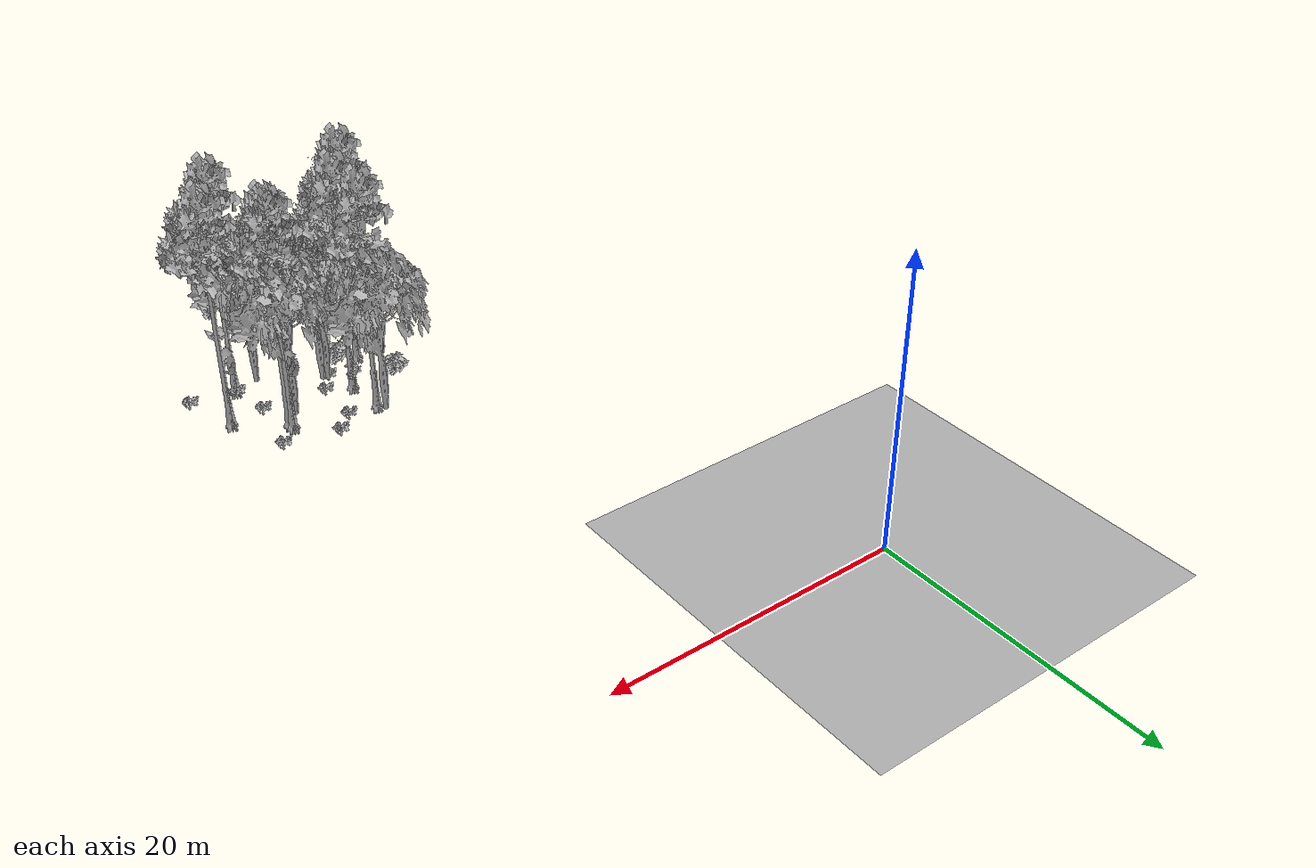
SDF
<sdf version="1.7">
 <world name="default">
  <model name="ground_plane">
   <static>1</static>
   <link name="link">
    <collision name="collision">
     <pose>-50 0 0 0 -0 0</pose>
     <geometry><plane><normal>0 0 1</normal><size>80 80</size></plane></geometry>
     <surface><contact><ode><min_depth>0.01</min_depth><max_vel>0</max_vel></ode></contact></surface>
    </collision>
    <visual name="grass">
     <cast_shadows>0</cast_shadows>
     <geometry>
      <mesh>
       <scale>0.46714285714285714 0.46714285714285714 0.1</scale>
       <uri>file://grass_plane/meshes/grass_plane.dae</uri>
      </mesh>
     </geometry>
    </visual>
   </link>
  </model>
  <model name="Tree 7">
   <static>1</static>
   <pose>22.965398107199924 -38.944472882966785 0 1.57079 -0 0</pose>
   <link name="link">
    <collision name="collision">
     <geometry><mesh><scale>3.5 5 3.5</scale><uri>model://tree_9/meshes/tree_9.obj</uri></mesh></geometry>
    </collision>
    <visual name="visual">
     <geometry><mesh><scale>3.5 5 3.5</scale><uri>model://tree_9/meshes/tree_9.obj</uri></mesh></geometry>
    </visual>
   </link>
  </model>
  <model name="Tree 29">
   <static>1</static>
   <pose>17.50396830890879 -36.59775077264011 0 1.57079 -0 0</pose>
   <link name="link">
    <collision name="collision">
     <geometry><mesh><scale>3.5 5 3.5</scale><uri>model://tree_2/meshes/tree_2.obj</uri></mesh></geometry>
    </collision>
    <visual name="visual">
     <geometry><mesh><scale>3.5 5 3.5</scale><uri>model://tree_2/meshes/tree_2.obj</uri></mesh></geometry>
    </visual>
   </link>
  </model>
  <model name="Tree 93">
   <static>1</static>
   <pose>16.177761800106218 -31.621246543498216 0 1.57079 -0 0</pose>
   <link name="link">
    <collision name="collision">
     <geometry><mesh><scale>3.5 5 3.5</scale><uri>model://tree_9/meshes/tree_9.obj</uri></mesh></geometry>
    </collision>
    <visual name="visual">
     <geometry><mesh><scale>3.5 5 3.5</scale><uri>model://tree_9/meshes/tree_9.obj</uri></mesh></geometry>
    </visual>
   </link>
  </model>
  <model name="Tree 121">
   <static>1</static>
   <pose>21.790042105131327 -32.75702235079278 0 1.57079 -0 0</pose>
   <link name="link">
    <collision name="collision">
     <geometry><mesh><scale>3.5 5 3.5</scale><uri>model://tree_9/meshes/tree_9.obj</uri></mesh></geometry>
    </collision>
    <visual name="visual">
     <geometry><mesh><scale>3.5 5 3.5</scale><uri>model://tree_9/meshes/tree_9.obj</uri></mesh></geometry>
    </visual>
   </link>
  </model>
  <model name="Tree 188">
   <static>1</static>
   <pose>15.85224101577473 -30.80335013601242 0 1.57079 -0 0</pose>
   <link name="link">
    <collision name="collision">
     <geometry><mesh><scale>3.5 5 3.5</scale><uri>model://tree_2/meshes/tree_2.obj</uri></mesh></geometry>
    </collision>
    <visual name="visual">
     <geometry><mesh><scale>3.5 5 3.5</scale><uri>model://tree_2/meshes/tree_2.obj</uri></mesh></geometry>
    </visual>
   </link>
  </model>
  <model name="Tree 192">
   <static>1</static>
   <pose>21.824860956661993 -33.21033828806206 0 1.57079 -0 0</pose>
   <link name="link">
    <collision name="collision">
     <geometry><mesh><scale>3.5 5 3.5</scale><uri>model://tree_9/meshes/tree_9.obj</uri></mesh></geometry>
    </collision>
    <visual name="visual">
     <geometry><mesh><scale>3.5 5 3.5</scale><uri>model://tree_9/meshes/tree_9.obj</uri></mesh></geometry>
    </visual>
   </link>
  </model>
  <model name="Tree 226">
   <static>1</static>
   <pose>16.356884909973445 -34.65071806329391 0 1.57079 -0 0</pose>
   <link name="link">
    <collision name="collision">
     <geometry><mesh><scale>3.5 5 3.5</scale><uri>model://tree_9/meshes/tree_9.obj</uri></mesh></geometry>
    </collision>
    <visual name="visual">
     <geometry><mesh><scale>3.5 5 3.5</scale><uri>model://tree_9/meshes/tree_9.obj</uri></mesh></geometry>
    </visual>
   </link>
  </model>
  <model name="Tree 238">
   <static>1</static>
   <pose>17.171285819987965 -36.432437830828015 0 1.57079 -0 0</pose>
   <link name="link">
    <collision name="collision">
     <geometry><mesh><scale>3.5 5 3.5</scale><uri>model://tree_2/meshes/tree_2.obj</uri></mesh></geometry>
    </collision>
    <visual name="visual">
     <geometry><mesh><scale>3.5 5 3.5</scale><uri>model://tree_2/meshes/tree_2.obj</uri></mesh></geometry>
    </visual>
   </link>
  </model>
  <model name="Tree 252">
   <static>1</static>
   <pose>14.271549575023968 -37.889420362336594 0 1.57079 -0 0</pose>
   <link name="link">
    <collision name="collision">
     <geometry><mesh><scale>3.5 5 3.5</scale><uri>model://tree_9/meshes/tree_9.obj</uri></mesh></geometry>
    </collision>
    <visual name="visual">
     <geometry><mesh><scale>3.5 5 3.5</scale><uri>model://tree_9/meshes/tree_9.obj</uri></mesh></geometry>
    </visual>
   </link>
  </model>
  <model name="Tree 397">
   <static>1</static>
   <pose>24.897081042681492 -35.48503167765597 0 1.57079 -0 0</pose>
   <link name="link">
    <collision name="collision">
     <geometry><mesh><scale>3.5 5 3.5</scale><uri>model://tree_9/meshes/tree_9.obj</uri></mesh></geometry>
    </collision>
    <visual name="visual">
     <geometry><mesh><scale>3.5 5 3.5</scale><uri>model://tree_9/meshes/tree_9.obj</uri></mesh></geometry>
    </visual>
   </link>
  </model>
  <model name="Tree 527">
   <static>1</static>
   <pose>21.23731408045205 -39.101194627057154 0 1.57079 -0 0</pose>
   <link name="link">
    <collision name="collision">
     <geometry><mesh><scale>3.5 5 3.5</scale><uri>model://tree_2/meshes/tree_2.obj</uri></mesh></geometry>
    </collision>
    <visual name="visual">
     <geometry><mesh><scale>3.5 5 3.5</scale><uri>model://tree_2/meshes/tree_2.obj</uri></mesh></geometry>
    </visual>
   </link>
  </model>
  <model name="Tree 607">
   <static>1</static>
   <pose>20.918968575971633 -33.82791854407564 0 1.57079 -0 0</pose>
   <link name="link">
    <collision name="collision">
     <geometry><mesh><scale>3.5 5 3.5</scale><uri>model://tree_2/meshes/tree_2.obj</uri></mesh></geometry>
    </collision>
    <visual name="visual">
     <geometry><mesh><scale>3.5 5 3.5</scale><uri>model://tree_2/meshes/tree_2.obj</uri></mesh></geometry>
    </visual>
   </link>
  </model>
  <model name="Bush 61">
   <static>1</static>
   <pose>15.963546717378833 -37.71807582787847 0 1.57079 -0 0</pose>
   <link name="link">
    <collision name="collision">
     <geometry><mesh><scale>2 2 2</scale><uri>model://bush_1/meshes/bush_1.obj</uri></mesh></geometry>
     <surface><contact><collide_without_contact>false</collide_without_contact></contact></surface>
    </collision>
    <visual name="visual">
     <geometry><mesh><scale>2 2 2</scale><uri>model://bush_1/meshes/bush_1.obj</uri></mesh></geometry>
    </visual>
   </link>
  </model>
  <model name="Bush 131">
   <static>1</static>
   <pose>17.01447092605507 -36.83119132215769 0 1.57079 -0 0</pose>
   <link name="link">
    <collision name="collision">
     <geometry><mesh><scale>2 2 2</scale><uri>model://bush_2/meshes/bush_2.obj</uri></mesh></geometry>
     <surface><contact><collide_without_contact>false</collide_without_contact></contact></surface>
    </collision>
    <visual name="visual">
     <geometry><mesh><scale>2 2 2</scale><uri>model://bush_2/meshes/bush_2.obj</uri></mesh></geometry>
    </visual>
   </link>
  </model>
  <model name="Bush 222">
   <static>1</static>
   <pose>22.934417009577828 -38.69130593498731 0 1.57079 -0 0</pose>
   <link name="link">
    <collision name="collision">
     <geometry><mesh><scale>2 2 2</scale><uri>model://bush_2/meshes/bush_2.obj</uri></mesh></geometry>
     <surface><contact><collide_without_contact>false</collide_without_contact></contact></surface>
    </collision>
    <visual name="visual">
     <geometry><mesh><scale>2 2 2</scale><uri>model://bush_2/meshes/bush_2.obj</uri></mesh></geometry>
    </visual>
   </link>
  </model>
  <model name="Bush 271">
   <static>1</static>
   <pose>19.460550305895957 -30.48923913223308 0 1.57079 -0 0</pose>
   <link name="link">
    <collision name="collision">
     <geometry><mesh><scale>2 2 2</scale><uri>model://bush_2/meshes/bush_2.obj</uri></mesh></geometry>
     <surface><contact><collide_without_contact>false</collide_without_contact></contact></surface>
    </collision>
    <visual name="visual">
     <geometry><mesh><scale>2 2 2</scale><uri>model://bush_2/meshes/bush_2.obj</uri></mesh></geometry>
    </visual>
   </link>
  </model>
  <model name="Bush 297">
   <static>1</static>
   <pose>18.162794271868925 -31.796298882544978 0 1.57079 -0 0</pose>
   <link name="link">
    <collision name="collision">
     <geometry><mesh><scale>2 2 2</scale><uri>model://bush_2/meshes/bush_2.obj</uri></mesh></geometry>
     <surface><contact><collide_without_contact>false</collide_without_contact></contact></surface>
    </collision>
    <visual name="visual">
     <geometry><mesh><scale>2 2 2</scale><uri>model://bush_2/meshes/bush_2.obj</uri></mesh></geometry>
    </visual>
   </link>
  </model>
  <model name="Bush 318">
   <static>1</static>
   <pose>26.08167281542147 -39.244281487919814 0 1.57079 -0 0</pose>
   <link name="link">
    <collision name="collision">
     <geometry><mesh><scale>2 2 2</scale><uri>model://bush_2/meshes/bush_2.obj</uri></mesh></geometry>
     <surface><contact><collide_without_contact>false</collide_without_contact></contact></surface>
    </collision>
    <visual name="visual">
     <geometry><mesh><scale>2 2 2</scale><uri>model://bush_2/meshes/bush_2.obj</uri></mesh></geometry>
    </visual>
   </link>
  </model>
  <model name="Bush 466">
   <static>1</static>
   <pose>16.232028882898057 -34.45450236147296 0 1.57079 -0 0</pose>
   <link name="link">
    <collision name="collision">
     <geometry><mesh><scale>2 2 2</scale><uri>model://bush_5/meshes/bush_5.obj</uri></mesh></geometry>
     <surface><contact><collide_without_contact>false</collide_without_contact></contact></surface>
    </collision>
    <visual name="visual">
     <geometry><mesh><scale>2 2 2</scale><uri>model://bush_5/meshes/bush_5.obj</uri></mesh></geometry>
    </visual>
   </link>
  </model>
  <model name="Bush 577">
   <static>1</static>
   <pose>18.030350121794562 -35.32818267115138 0 1.57079 -0 0</pose>
   <link name="link">
    <collision name="collision">
     <geometry><mesh><scale>2 2 2</scale><uri>model://bush_2/meshes/bush_2.obj</uri></mesh></geometry>
     <surface><contact><collide_without_contact>false</collide_without_contact></contact></surface>
    </collision>
    <visual name="visual">
     <geometry><mesh><scale>2 2 2</scale><uri>model://bush_2/meshes/bush_2.obj</uri></mesh></geometry>
    </visual>
   </link>
  </model>
  <model name="Bush 584">
   <static>1</static>
   <pose>23.168502220614748 -31.301290267341983 0 1.57079 -0 0</pose>
   <link name="link">
    <collision name="collision">
     <geometry><mesh><scale>2 2 2</scale><uri>model://bush_2/meshes/bush_2.obj</uri></mesh></geometry>
     <surface><contact><collide_without_contact>false</collide_without_contact></contact></surface>
    </collision>
    <visual name="visual">
     <geometry><mesh><scale>2 2 2</scale><uri>model://bush_2/meshes/bush_2.obj</uri></mesh></geometry>
    </visual>
   </link>
  </model>
  <model name="Bush 600">
   <static>1</static>
   <pose>22.431848288288535 -35.77139323664197 0 1.57079 -0 0</pose>
   <link name="link">
    <collision name="collision">
     <geometry><mesh><scale>2 2 2</scale><uri>model://bush_2/meshes/bush_2.obj</uri></mesh></geometry>
     <surface><contact><collide_without_contact>false</collide_without_contact></contact></surface>
    </collision>
    <visual name="visual">
     <geometry><mesh><scale>2 2 2</scale><uri>model://bush_2/meshes/bush_2.obj</uri></mesh></geometry>
    </visual>
   </link>
  </model>
  <model name="Bush 628">
   <static>1</static>
   <pose>13.483439232303112 -34.03213636928211 0 1.57079 -0 0</pose>
   <link name="link">
    <collision name="collision">
     <geometry><mesh><scale>2 2 2</scale><uri>model://bush_1/meshes/bush_1.obj</uri></mesh></geometry>
     <surface><contact><collide_without_contact>false</collide_without_contact></contact></surface>
    </collision>
    <visual name="visual">
     <geometry><mesh><scale>2 2 2</scale><uri>model://bush_1/meshes/bush_1.obj</uri></mesh></geometry>
    </visual>
   </link>
  </model>
 </world>
</sdf>
